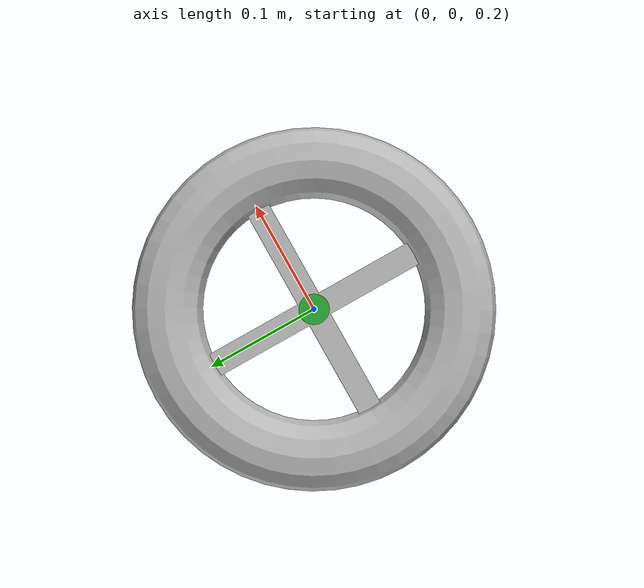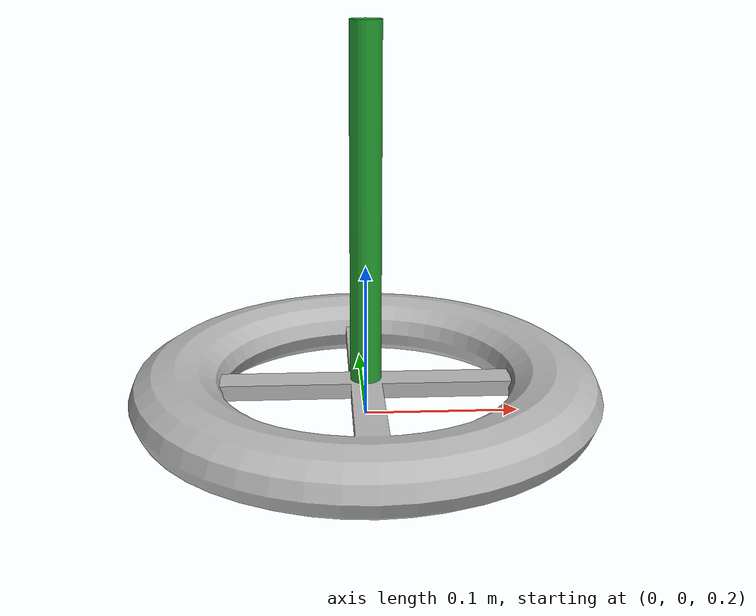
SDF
<?xml version='1.0'?>
<sdf version='1.4'>
  <model name='valve'>
    <static>false</static>
    <link name='wheel'>
      <pose>0 0 0.07 0 0 0</pose>

      <inertial>
        <pose>0 0 0.15 0 0 0</pose>
        <mass>3.0</mass>
        <inertia>
          <ixx>0.0601875</ixx>
          <ixy>0</ixy>
          <ixz>0</ixz>
          <iyy>0.0601875</iyy>
          <iyz>0</iyz>
          <izz>0.120225</izz>
        </inertia>
      </inertial>

      <collision name="collision">
        <pose>0 0 0.15 0 0 0</pose>
        <geometry>
          <mesh>
            <uri>model://vrc_valve_a/meshes/vrc_valve_a.dae</uri>
          </mesh>
        </geometry>
      </collision>

      <visual name="visual">
        <pose>0 0 0.15 0 0 0</pose>
        <geometry>
          <mesh>
            <uri>model://vrc_valve_a/meshes/vrc_valve_a.dae</uri>
          </mesh>
        </geometry>
        <material>
          <script>
            <uri>model://vrc_valve_a/materials/scripts</uri>
            <uri>model://vrc_valve_a/materials/textures</uri>
          </script>
        </material>
      </visual>
    </link>

    <link name="pipe">
      <pose>0 0 0.32 0 0 0</pose>

      <inertial>
        <mass>3.0</mass>
        <inertia>
          <ixx>0.0601875</ixx>
          <ixy>0</ixy>
          <ixz>0</ixz>
          <iyy>0.0601875</iyy>
          <iyz>0</iyz>
          <izz>0.120225</izz>
        </inertia>
      </inertial>

      <collision name="collision">
        <pose>0 0 0.017 0 0 0</pose>
        <geometry>
          <cylinder>
            <radius>0.01</radius>
            <length>0.23</length>
          </cylinder>
        </geometry>
      </collision>
      <visual name="visual">
        <pose>0 0 0.017 0 0 0</pose>
        <geometry>
          <cylinder>
            <radius>0.01</radius>
            <length>0.23</length>
          </cylinder>
        </geometry>
        <material>
          <script>
            <uri>file://media/materials/scripts</uri>
            <name>Gazebo/Green</name>
          </script>
        </material>
      </visual>
    </link>

    <joint name="valve" type="revolute">
      <parent>pipe</parent>
      <child>wheel</child>
      <axis>
        <xyz>0 0 1</xyz>
        <limit>
          <lower>-12.5663706144</lower>
          <upper>0</upper>
        </limit>
        <dynamics>
          <damping>1.0</damping>
        </dynamics>
      </axis>
      <physics>
        <ode>
          <cfm_damping>1</cfm_damping>
        </ode>
      </physics>
    </joint>

    <joint name="world_joint" type="revolute">
      <child>pipe</child>
      <parent>world</parent>
      <axis>
        <limit>
          <lower>0</lower>
          <upper>0</upper>
        </limit>
        <xyz>0 1 0</xyz>
        <dynamics>
          <damping>1.0</damping>
        </dynamics>
      </axis>
      <physics>
        <ode>
          <cfm_damping>1</cfm_damping>
        </ode>
      </physics>
    </joint>
  </model>
</sdf>
